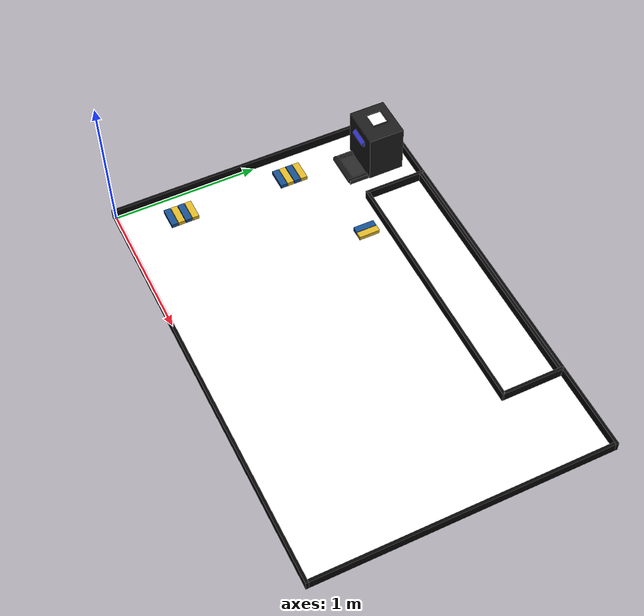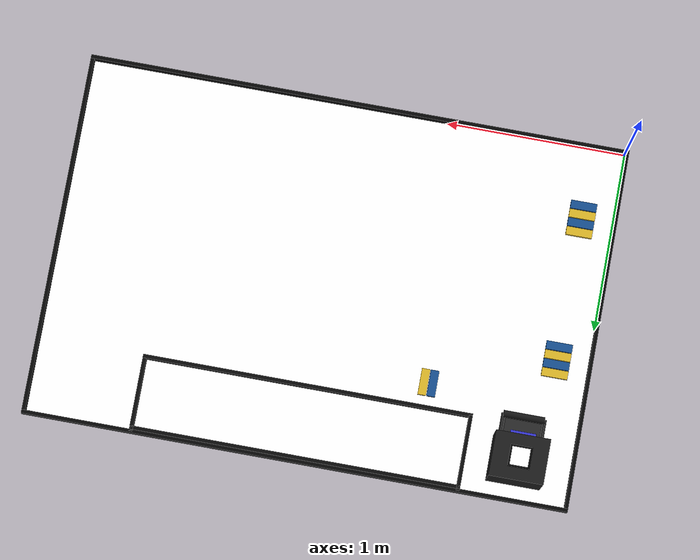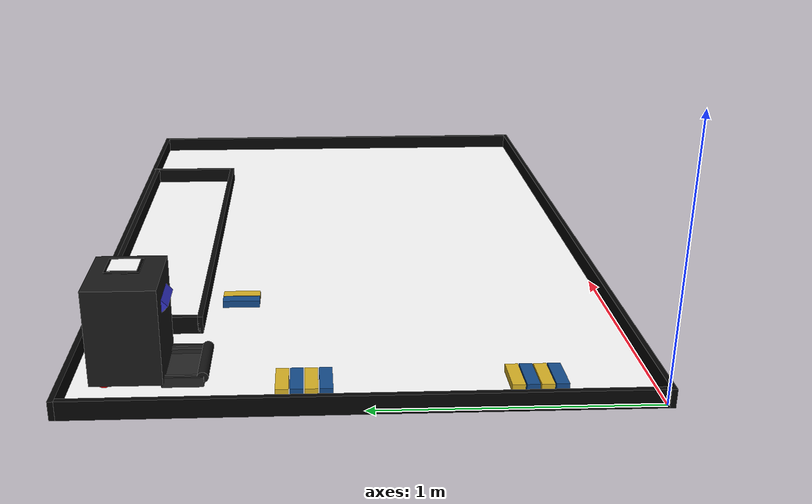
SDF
<sdf version="1.10">
 <world name="Eurobot_world">
  <model name="playground_plane">
   <static>true</static>
   <link name="link">
    <collision name="collision">
     <geometry><plane><normal>0 0 1</normal><size>3 2</size></plane></geometry>
    </collision>
    <visual name="visual">
     <geometry><plane><normal>0 0 1</normal><size>3 2</size></plane></geometry>
     <material>
      <ambient>1 1 1 1</ambient>
      <diffuse>1 1 1 1</diffuse>
      <specular>0.1 0.1 0.1 1</specular>
      <pbr>
       <metal>
        <albedo_map>file://REPLACED_BY_SIM_LAUNCH/materials/textures/playground_mat.png</albedo_map>
        <roughness>1.0</roughness>
        <metalness>0.0</metalness>
       </metal>
      </pbr>
     </material>
    </visual>
    <pose>1.5 1 0 0 0 0</pose>
   </link>
  </model>
  <model name="main_bot" canonical_link="chassis">
   <pose>0.3 1.9 0 0 0 -1.5707963267949</pose>
   <plugin filename="gz-sim-diff-drive-system" name="gz::sim::systems::DiffDrive">
    <left_joint>left_wheel_joint</left_joint>
    <right_joint>right_wheel_joint</right_joint>
    <wheel_separation>0.20</wheel_separation>
    <wheel_radius>0.03</wheel_radius>
    <topic>/cmd_vel</topic>
    <min_linear_acceleration>-2</min_linear_acceleration>
    <max_linear_acceleration>2</max_linear_acceleration>
    <min_linear_velocity>-3</min_linear_velocity>
    <max_linear_velocity>3</max_linear_velocity>
    <min_angular_acceleration>-3.0</min_angular_acceleration>
    <max_angular_acceleration>3.0</max_angular_acceleration>
    <min_angular_velocity>-2.0</min_angular_velocity>
    <max_angular_velocity>2.0</max_angular_velocity>
    <odom_publish_frequency>50</odom_publish_frequency>
    <odom_topic>/odom</odom_topic>
    <frame_id>odom</frame_id>
    <child_frame_id>base_link</child_frame_id>
   </plugin>
   <link name="chassis">
    <visual name="chassis_visual">
     <pose>0.1 0 0.20 0 0 0</pose>
     <geometry><box><size>0.25 0.3 0.35</size></box></geometry>
     <material>
      <ambient>0.1 0.1 0.1 1</ambient>
      <diffuse>0.1 0.1 0.1 1</diffuse>
      <specular>0.2 0.2 0.2 1</specular>
     </material>
    </visual>
    <collision name="chassis_collision">
     <pose>0.1 0 0.18 0 0 0</pose>
     <geometry><box><size>0.25 0.3 0.35</size></box></geometry>
    </collision>
    <inertial>
     <pose>0.1 0 0.18 0 0 0</pose>
     <mass>1</mass>
     <inertia>
      <ixx>0.0177083333</ixx>
      <ixy>0</ixy>
      <ixz>0</ixz>
      <iyy>0.0154166667</iyy>
      <iyz>0</iyz>
      <izz>0.0127083333</izz>
     </inertia>
    </inertial>
    <sensor name="opencr_imu" type="imu">
     <always_on>1</always_on>
     <update_rate>200</update_rate>
     <visualize>false</visualize>
     <topic>/imu</topic>
    </sensor>
    <visual name="bot_tag_post_visual">
     <pose>0.10 0 0.3875 0 0 0</pose>
     <geometry><box><size>0.02 0.02 0.025</size></box></geometry>
     <material>
      <ambient>0.15 0.15 0.15 1</ambient>
      <diffuse>0.15 0.15 0.15 1</diffuse>
      <specular>0.05 0.05 0.05 1</specular>
     </material>
    </visual>
    <visual name="bot_tag_backing_visual">
     <pose>0.10 0 0.4015 0 0 0</pose>
     <geometry><box><size>0.12 0.12 0.003</size></box></geometry>
     <material><ambient>0 0 0 1</ambient><diffuse>0 0 0 1</diffuse><specular>0 0 0 1</specular></material>
    </visual>
    <visual name="bot_tag_71_visual">
     <pose>0.10 0 0.4045 0 0 0</pose>
     <geometry><box><size>0.10 0.10 0.002</size></box></geometry>
     <cast_shadows>false</cast_shadows>
     <material>
      <ambient>1 1 1 1</ambient>
      <diffuse>1 1 1 1</diffuse>
      <specular>0 0 0 1</specular>
      <pbr>
       <metal>
        <albedo_map>file://REPLACED_BY_SIM_LAUNCH/materials/textures/71_Bot_ID_YELLOW.png</albedo_map>
        <roughness>1.0</roughness>
        <metalness>0.0</metalness>
       </metal>
      </pbr>
     </material>
    </visual>
   </link>
   <link name="left_wheel">
    <pose>0.02 0.1 0.03 -1.570796 0 0</pose>
    <visual name="left_wheel_visual">
     <geometry><cylinder><radius>0.03</radius><length>0.03</length></cylinder></geometry>
     <material>
      <ambient>1.0 0.0 0.0 1</ambient>
      <diffuse>1.0 0.0 0.0 1</diffuse>
      <specular>1.0 0.0 0.0 1</specular>
     </material>
    </visual>
    <collision name="left_wheel_collision">
     <geometry><cylinder><radius>0.03</radius><length>0.03</length></cylinder></geometry>
    </collision>
    <inertial>
     <mass>0.05</mass>
     <inertia>
      <ixx>0.000015</ixx>
      <ixy>0</ixy>
      <ixz>0</ixz>
      <iyy>0.000015</iyy>
      <iyz>0</iyz>
      <izz>0.0000225</izz>
     </inertia>
    </inertial>
   </link>
   <joint name="left_wheel_joint" type="revolute">
    <parent>chassis</parent>
    <child>left_wheel</child>
    <axis><xyz>0 0 1</xyz><dynamics><damping>0.2</damping></dynamics></axis>
   </joint>
   <link name="right_wheel">
    <pose>0.02 -0.1 0.03 1.5707963 0 0</pose>
    <visual name="right_wheel_visual">
     <geometry><cylinder><radius>0.03</radius><length>0.03</length></cylinder></geometry>
     <material>
      <ambient>1.0 0.0 0.0 1</ambient>
      <diffuse>1.0 0.0 0.0 1</diffuse>
      <specular>1.0 0.0 0.0 1</specular>
     </material>
    </visual>
    <collision name="right_wheel_collision">
     <geometry><cylinder><radius>0.03</radius><length>0.03</length></cylinder></geometry>
    </collision>
    <inertial>
     <mass>0.05</mass>
     <inertia>
      <ixx>0.000015</ixx>
      <ixy>0</ixy>
      <ixz>0</ixz>
      <iyy>0.000015</iyy>
      <iyz>0</iyz>
      <izz>0.0000225</izz>
     </inertia>
    </inertial>
   </link>
   <joint name="right_wheel_joint" type="revolute">
    <parent>chassis</parent>
    <child>right_wheel</child>
    <axis><xyz>0 0 -1</xyz><dynamics><damping>0.2</damping></dynamics></axis>
   </joint>
   <link name="caster_wheel">
    <pose>0.18 0 0.03 0 0 0</pose>
    <visual name="caster_wheel_visual">
     <geometry><sphere><radius>0.03</radius></sphere></geometry>
     <material>
      <ambient>0.0 1 0.0 1</ambient>
      <diffuse>0.0 1 0.0 1</diffuse>
      <specular>0.0 1 0.0 1</specular>
     </material>
    </visual>
    <collision name="caster_wheel_collision">
     <geometry><sphere><radius>0.03</radius></sphere></geometry>
     <surface><friction><ode><mu>0.001</mu><mu2>0.001</mu2></ode></friction></surface>
    </collision>
    <inertial>
     <mass>0.05</mass>
     <inertia>
      <ixx>0.000018</ixx>
      <ixy>0</ixy>
      <ixz>0</ixz>
      <iyy>0.000018</iyy>
      <iyz>0</iyz>
      <izz>0.000018</izz>
     </inertia>
    </inertial>
   </link>
   <joint name="caster_wheel_joint" type="fixed"><parent>chassis</parent><child>caster_wheel</child></joint>
   <link name="camera_link">
    <pose>0.22 0 0.28 0 0.78539816 0</pose>
    <visual name="camera_visual">
     <geometry><box><size>0.04 0.14 0.04</size></box></geometry>
     <material><ambient>0.2 0.2 0.8 1</ambient><diffuse>0.2 0.2 0.8 1</diffuse></material>
    </visual>
    <visual name="left_lens">
     <pose>0.016 0.06 0 0 1.57 0</pose>
     <geometry><cylinder><radius>0.01</radius><length>0.01</length></cylinder></geometry>
     <material><ambient>0 0 0 1</ambient><diffuse>0 0 0 1</diffuse></material>
    </visual>
    <visual name="right_lens">
     <pose>0.016 -0.06 0 0 1.57 0</pose>
     <geometry><cylinder><radius>0.01</radius><length>0.01</length></cylinder></geometry>
    </visual>
    <inertial>
     <mass>0.02</mass>
     <inertia><ixx>1e-5</ixx><ixy>0</ixy><ixz>0</ixz><iyy>1e-5</iyy><iyz>0</iyz><izz>1e-5</izz></inertia>
    </inertial>
    <sensor name="left_camera" type="camera">
     <pose>0 0.06 0 0 0 0</pose>
     <always_on>true</always_on>
     <update_rate>30</update_rate>
     <visualize>true</visualize>
     <topic>/camera/left/image_raw</topic>
     <camera>
      <horizontal_fov>1.605</horizontal_fov>
      <image><width>640</width><height>480</height><format>R8G8B8</format></image>
      <clip><near>0.05</near><far>20</far></clip>
     </camera>
    </sensor>
    <sensor name="right_camera" type="camera">
     <pose>0 -0.06 0 0 0 0</pose>
     <always_on>true</always_on>
     <update_rate>30</update_rate>
     <visualize>true</visualize>
     <topic>/camera/right/image_raw</topic>
     <camera>
      <horizontal_fov>1.605</horizontal_fov>
      <image><width>640</width><height>480</height><format>R8G8B8</format></image>
      <clip><near>0.05</near><far>20</far></clip>
     </camera>
    </sensor>
   </link>
   <joint name="camera_joint" type="fixed"><parent>chassis</parent><child>camera_link</child></joint>
   <link name="camera_optical_frame"/>
   <joint name="camera_optical_joint" type="fixed">
    <parent>camera_link</parent>
    <child>camera_optical_frame</child>
    <pose>0 0 0 -1.57079632679 0.78539816 -1.57079632679</pose>
   </joint>
   <link name="dustpan">
    <pose>0.215 0 0.033 0 0 0</pose>
    <inertial>
     <pose>0.072 0 0.010 0 0 0</pose>
     <mass>0.15</mass>
     <inertia><ixx>0.00015</ixx><iyy>0.00008</iyy><izz>0.00020</izz><ixy>0</ixy><ixz>0</ixz><iyz>0</iyz></inertia>
    </inertial>
    <visual name="dustpan_bottom_visual">
     <pose>0.072 0 -0.032 0 0 0</pose>
     <geometry><box><size>0.144 0.240 0.002</size></box></geometry>
     <material>
      <ambient>0.12 0.12 0.12 1</ambient>
      <diffuse>0.15 0.15 0.15 1</diffuse>
      <specular>0.3 0.3 0.3 1</specular>
     </material>
    </visual>
    <collision name="dustpan_bottom_collision">
     <pose>0.072 0 -0.033 0 0 0</pose>
     <geometry><box><size>0.144 0.240 0.000001</size></box></geometry>
     <surface><friction><ode><mu>0.1</mu><mu2>0.1</mu2></ode></friction></surface>
    </collision>
    <visual name="dustpan_left_wall_visual">
     <pose>0.072 0.1225 -0.0125 0 0 0</pose>
     <geometry><box><size>0.144 0.005 0.037</size></box></geometry>
     <material>
      <ambient>0.12 0.12 0.12 1</ambient>
      <diffuse>0.15 0.15 0.15 1</diffuse>
      <specular>0.3 0.3 0.3 1</specular>
     </material>
    </visual>
    <collision name="dustpan_left_wall_collision">
     <pose>0.072 0.1225 -0.0125 0 0 0</pose>
     <geometry><box><size>0.144 0.005 0.037</size></box></geometry>
    </collision>
    <visual name="dustpan_right_wall_visual">
     <pose>0.072 -0.1225 -0.0125 0 0 0</pose>
     <geometry><box><size>0.144 0.005 0.037</size></box></geometry>
     <material>
      <ambient>0.12 0.12 0.12 1</ambient>
      <diffuse>0.15 0.15 0.15 1</diffuse>
      <specular>0.3 0.3 0.3 1</specular>
     </material>
    </visual>
    <collision name="dustpan_right_wall_collision">
     <pose>0.072 -0.1225 -0.0125 0 0 0</pose>
     <geometry><box><size>0.144 0.005 0.037</size></box></geometry>
    </collision>
    <visual name="dustpan_back_wall_visual">
     <pose>0.001 0 -0.0125 0 0 0</pose>
     <geometry><box><size>0.002 0.240 0.037</size></box></geometry>
     <material>
      <ambient>0.12 0.12 0.12 1</ambient>
      <diffuse>0.15 0.15 0.15 1</diffuse>
      <specular>0.3 0.3 0.3 1</specular>
     </material>
    </visual>
   </link>
   <joint name="dustpan_joint" type="revolute">
    <parent>chassis</parent>
    <child>dustpan</child>
    <axis>
     <xyz>0 -1 0</xyz>
     <limit><lower>0.0</lower><upper>1.0472</upper><effort>10.0</effort></limit>
     <dynamics><damping>0.5</damping></dynamics>
    </axis>
   </joint>
   <plugin filename="gz-sim-joint-position-controller-system" name="gz::sim::systems::JointPositionController">
    <joint_name>dustpan_joint</joint_name>
    <topic>/dustpan/angle</topic>
    <p_gain>3.0</p_gain>
    <i_gain>0.1</i_gain>
    <d_gain>1.5</d_gain>
   </plugin>
   <link name="carwash_arm">
    <pose>0.215 0 0.033 0 0 0</pose>
    <inertial>
     <pose>0.07 0 0.005 0 0 0</pose>
     <mass>0.08</mass>
     <inertia><ixx>0.00005</ixx><iyy>0.00004</iyy><izz>0.00006</izz><ixy>0</ixy><ixz>0</ixz><iyz>0</iyz></inertia>
    </inertial>
    <visual name="arm_left_visual">
     <pose>0.07 0.105 0.0 0 0 0</pose>
     <geometry><box><size>0.140 0.010 0.010</size></box></geometry>
     <material><ambient>0.15 0.15 0.15 1</ambient><diffuse>0.2 0.2 0.2 1</diffuse></material>
    </visual>
    <visual name="arm_right_visual">
     <pose>0.07 -0.105 0.0 0 0 0</pose>
     <geometry><box><size>0.140 0.010 0.010</size></box></geometry>
     <material><ambient>0.15 0.15 0.15 1</ambient><diffuse>0.2 0.2 0.2 1</diffuse></material>
    </visual>
   </link>
   <link name="carwash_roller">
    <pose relative_to="carwash_arm">0.140 0 0.0 1.5708 0 0</pose>
    <inertial>
     <mass>0.05</mass>
     <inertia><ixx>0.00022</ixx><iyy>0.00001</iyy><izz>0.00022</izz><ixy>0</ixy><ixz>0</ixz><iyz>0</iyz></inertia>
    </inertial>
    <visual name="roller_visual">
     <geometry><cylinder><radius>0.020</radius><length>0.230</length></cylinder></geometry>
     <material>
      <ambient>0.05 0.05 0.05 1</ambient>
      <diffuse>0.08 0.08 0.08 1</diffuse>
      <specular>0.1 0.1 0.1 1</specular>
     </material>
    </visual>
    <collision name="roller_collision">
     <geometry><cylinder><radius>0.020</radius><length>0.230</length></cylinder></geometry>
     <surface><friction><ode><mu>2.0</mu><mu2>2.0</mu2></ode></friction></surface>
    </collision>
   </link>
   <joint name="carwash_arm_joint" type="revolute">
    <parent>chassis</parent>
    <child>carwash_arm</child>
    <axis>
     <xyz>0 -1 0</xyz>
     <limit><lower>0.0</lower><upper>1.2217</upper><effort>10.0</effort></limit>
     <dynamics><damping>0.2</damping></dynamics>
    </axis>
   </joint>
   <joint name="carwash_roller_joint" type="revolute">
    <parent>carwash_arm</parent>
    <child>carwash_roller</child>
    <axis>
     <xyz>0 0 -1</xyz>
     <limit><lower>-1e16</lower><upper>1e16</upper></limit>
     <dynamics><damping>0.01</damping></dynamics>
    </axis>
   </joint>
   <plugin filename="gz-sim-joint-position-controller-system" name="gz::sim::systems::JointPositionController">
    <joint_name>carwash_arm_joint</joint_name>
    <topic>/carwash/arm_angle</topic>
    <p_gain>5.0</p_gain>
    <i_gain>0.1</i_gain>
    <d_gain>1.0</d_gain>
   </plugin>
   <plugin filename="gz-sim-joint-controller-system" name="gz::sim::systems::JointController">
    <joint_name>carwash_roller_joint</joint_name>
    <topic>/carwash/roller_speed</topic>
   </plugin>
  </model>
  <model name="jenga_z1_p1">
   <pose>0.175 1.125 0.015 0 0 0.0</pose>
   <link name="link">
    <inertial>
     <mass>0.02</mass>
     <inertia>
      <ixx>0.0000012</ixx>
      <iyy>0.0000042</iyy>
      <izz>0.0000045</izz>
      <ixy>0</ixy>
      <ixz>0</ixz>
      <iyz>0</iyz>
     </inertia>
    </inertial>
    <collision name="collision">
     <geometry><box><size>0.140 0.040 0.022</size></box></geometry>
     <surface>
      <friction><ode><mu>0.3</mu><mu2>0.3</mu2></ode></friction>
      <contact><ode><max_vel>0.1</max_vel><min_depth>0.001</min_depth></ode></contact>
     </surface>
    </collision>
    <visual name="visual">
     <geometry><box><size>0.146 0.046 0.028</size></box></geometry>
     <material>
      <ambient>0.08 0.3 0.55 1</ambient>
      <diffuse>0.08 0.3 0.55 1</diffuse>
      <specular>0.2 0.2 0.2 1</specular>
     </material>
    </visual>
   </link>
  </model>
  <model name="jenga_z1_p2">
   <pose>0.175 1.175 0.015 0 0 0.0</pose>
   <link name="link">
    <inertial>
     <mass>0.02</mass>
     <inertia>
      <ixx>0.0000012</ixx>
      <iyy>0.0000042</iyy>
      <izz>0.0000045</izz>
      <ixy>0</ixy>
      <ixz>0</ixz>
      <iyz>0</iyz>
     </inertia>
    </inertial>
    <collision name="collision">
     <geometry><box><size>0.140 0.040 0.022</size></box></geometry>
     <surface>
      <friction><ode><mu>0.3</mu><mu2>0.3</mu2></ode></friction>
      <contact><ode><max_vel>0.1</max_vel><min_depth>0.001</min_depth></ode></contact>
     </surface>
    </collision>
    <visual name="visual">
     <geometry><box><size>0.146 0.046 0.028</size></box></geometry>
     <material>
      <ambient>0.85 0.7 0.15 1</ambient>
      <diffuse>0.85 0.7 0.15 1</diffuse>
      <specular>0.2 0.2 0.2 1</specular>
     </material>
    </visual>
   </link>
  </model>
  <model name="jenga_z1_p3">
   <pose>0.175 1.2249999999999999 0.015 0 0 0.0</pose>
   <link name="link">
    <inertial>
     <mass>0.02</mass>
     <inertia>
      <ixx>0.0000012</ixx>
      <iyy>0.0000042</iyy>
      <izz>0.0000045</izz>
      <ixy>0</ixy>
      <ixz>0</ixz>
      <iyz>0</iyz>
     </inertia>
    </inertial>
    <collision name="collision">
     <geometry><box><size>0.140 0.040 0.022</size></box></geometry>
     <surface>
      <friction><ode><mu>0.3</mu><mu2>0.3</mu2></ode></friction>
      <contact><ode><max_vel>0.1</max_vel><min_depth>0.001</min_depth></ode></contact>
     </surface>
    </collision>
    <visual name="visual">
     <geometry><box><size>0.146 0.046 0.028</size></box></geometry>
     <material>
      <ambient>0.08 0.3 0.55 1</ambient>
      <diffuse>0.08 0.3 0.55 1</diffuse>
      <specular>0.2 0.2 0.2 1</specular>
     </material>
    </visual>
   </link>
  </model>
  <model name="jenga_z1_p4">
   <pose>0.175 1.275 0.015 0 0 0.0</pose>
   <link name="link">
    <inertial>
     <mass>0.02</mass>
     <inertia>
      <ixx>0.0000012</ixx>
      <iyy>0.0000042</iyy>
      <izz>0.0000045</izz>
      <ixy>0</ixy>
      <ixz>0</ixz>
      <iyz>0</iyz>
     </inertia>
    </inertial>
    <collision name="collision">
     <geometry><box><size>0.140 0.040 0.022</size></box></geometry>
     <surface>
      <friction><ode><mu>0.3</mu><mu2>0.3</mu2></ode></friction>
      <contact><ode><max_vel>0.1</max_vel><min_depth>0.001</min_depth></ode></contact>
     </surface>
    </collision>
    <visual name="visual">
     <geometry><box><size>0.146 0.046 0.028</size></box></geometry>
     <material>
      <ambient>0.85 0.7 0.15 1</ambient>
      <diffuse>0.85 0.7 0.15 1</diffuse>
      <specular>0.2 0.2 0.2 1</specular>
     </material>
    </visual>
   </link>
  </model>
  <model name="jenga_z2_p1">
   <pose>0.175 0.325 0.015 0 0 0.0</pose>
   <link name="link">
    <inertial>
     <mass>0.02</mass>
     <inertia>
      <ixx>0.0000012</ixx>
      <iyy>0.0000042</iyy>
      <izz>0.0000045</izz>
      <ixy>0</ixy>
      <ixz>0</ixz>
      <iyz>0</iyz>
     </inertia>
    </inertial>
    <collision name="collision">
     <geometry><box><size>0.140 0.040 0.022</size></box></geometry>
     <surface>
      <friction><ode><mu>0.3</mu><mu2>0.3</mu2></ode></friction>
      <contact><ode><max_vel>0.1</max_vel><min_depth>0.001</min_depth></ode></contact>
     </surface>
    </collision>
    <visual name="visual">
     <geometry><box><size>0.146 0.046 0.028</size></box></geometry>
     <material>
      <ambient>0.08 0.3 0.55 1</ambient>
      <diffuse>0.08 0.3 0.55 1</diffuse>
      <specular>0.2 0.2 0.2 1</specular>
     </material>
    </visual>
   </link>
  </model>
  <model name="jenga_z2_p2">
   <pose>0.175 0.375 0.015 0 0 0.0</pose>
   <link name="link">
    <inertial>
     <mass>0.02</mass>
     <inertia>
      <ixx>0.0000012</ixx>
      <iyy>0.0000042</iyy>
      <izz>0.0000045</izz>
      <ixy>0</ixy>
      <ixz>0</ixz>
      <iyz>0</iyz>
     </inertia>
    </inertial>
    <collision name="collision">
     <geometry><box><size>0.140 0.040 0.022</size></box></geometry>
     <surface>
      <friction><ode><mu>0.3</mu><mu2>0.3</mu2></ode></friction>
      <contact><ode><max_vel>0.1</max_vel><min_depth>0.001</min_depth></ode></contact>
     </surface>
    </collision>
    <visual name="visual">
     <geometry><box><size>0.146 0.046 0.028</size></box></geometry>
     <material>
      <ambient>0.85 0.7 0.15 1</ambient>
      <diffuse>0.85 0.7 0.15 1</diffuse>
      <specular>0.2 0.2 0.2 1</specular>
     </material>
    </visual>
   </link>
  </model>
  <model name="jenga_z2_p3">
   <pose>0.175 0.42500000000000004 0.015 0 0 0.0</pose>
   <link name="link">
    <inertial>
     <mass>0.02</mass>
     <inertia>
      <ixx>0.0000012</ixx>
      <iyy>0.0000042</iyy>
      <izz>0.0000045</izz>
      <ixy>0</ixy>
      <ixz>0</ixz>
      <iyz>0</iyz>
     </inertia>
    </inertial>
    <collision name="collision">
     <geometry><box><size>0.140 0.040 0.022</size></box></geometry>
     <surface>
      <friction><ode><mu>0.3</mu><mu2>0.3</mu2></ode></friction>
      <contact><ode><max_vel>0.1</max_vel><min_depth>0.001</min_depth></ode></contact>
     </surface>
    </collision>
    <visual name="visual">
     <geometry><box><size>0.146 0.046 0.028</size></box></geometry>
     <material>
      <ambient>0.08 0.3 0.55 1</ambient>
      <diffuse>0.08 0.3 0.55 1</diffuse>
      <specular>0.2 0.2 0.2 1</specular>
     </material>
    </visual>
   </link>
  </model>
  <model name="jenga_z2_p4">
   <pose>0.175 0.47500000000000003 0.015 0 0 0.0</pose>
   <link name="link">
    <inertial>
     <mass>0.02</mass>
     <inertia>
      <ixx>0.0000012</ixx>
      <iyy>0.0000042</iyy>
      <izz>0.0000045</izz>
      <ixy>0</ixy>
      <ixz>0</ixz>
      <iyz>0</iyz>
     </inertia>
    </inertial>
    <collision name="collision">
     <geometry><box><size>0.140 0.040 0.022</size></box></geometry>
     <surface>
      <friction><ode><mu>0.3</mu><mu2>0.3</mu2></ode></friction>
      <contact><ode><max_vel>0.1</max_vel><min_depth>0.001</min_depth></ode></contact>
     </surface>
    </collision>
    <visual name="visual">
     <geometry><box><size>0.146 0.046 0.028</size></box></geometry>
     <material>
      <ambient>0.85 0.7 0.15 1</ambient>
      <diffuse>0.85 0.7 0.15 1</diffuse>
      <specular>0.2 0.2 0.2 1</specular>
     </material>
    </visual>
   </link>
  </model>
  <model name="jenga_z9_p1">
   <pose>0.825 1.45 0.015 0 0 1.5707963267948966</pose>
   <link name="link">
    <inertial>
     <mass>0.02</mass>
     <inertia>
      <ixx>0.0000012</ixx>
      <iyy>0.0000042</iyy>
      <izz>0.0000045</izz>
      <ixy>0</ixy>
      <ixz>0</ixz>
      <iyz>0</iyz>
     </inertia>
    </inertial>
    <collision name="collision">
     <geometry><box><size>0.140 0.040 0.022</size></box></geometry>
     <surface>
      <friction><ode><mu>0.3</mu><mu2>0.3</mu2></ode></friction>
      <contact><ode><max_vel>0.1</max_vel><min_depth>0.001</min_depth></ode></contact>
     </surface>
    </collision>
    <visual name="visual">
     <geometry><box><size>0.146 0.046 0.028</size></box></geometry>
     <material>
      <ambient>0.08 0.3 0.55 1</ambient>
      <diffuse>0.08 0.3 0.55 1</diffuse>
      <specular>0.2 0.2 0.2 1</specular>
     </material>
    </visual>
   </link>
  </model>
  <model name="jenga_z9_p2">
   <pose>0.875 1.45 0.015 0 0 1.5707963267948966</pose>
   <link name="link">
    <inertial>
     <mass>0.02</mass>
     <inertia>
      <ixx>0.0000012</ixx>
      <iyy>0.0000042</iyy>
      <izz>0.0000045</izz>
      <ixy>0</ixy>
      <ixz>0</ixz>
      <iyz>0</iyz>
     </inertia>
    </inertial>
    <collision name="collision">
     <geometry><box><size>0.140 0.040 0.022</size></box></geometry>
     <surface>
      <friction><ode><mu>0.3</mu><mu2>0.3</mu2></ode></friction>
      <contact><ode><max_vel>0.1</max_vel><min_depth>0.001</min_depth></ode></contact>
     </surface>
    </collision>
    <visual name="visual">
     <geometry><box><size>0.146 0.046 0.028</size></box></geometry>
     <material>
      <ambient>0.85 0.7 0.15 1</ambient>
      <diffuse>0.85 0.7 0.15 1</diffuse>
      <specular>0.2 0.2 0.2 1</specular>
     </material>
    </visual>
   </link>
  </model>
  <model name="eurobot_granary_walls">
   <static>true</static>
   <link name="granary_south_wall">
    <pose>1.5 1.59 0.035 0 0 0</pose>
    <collision name="collision"><geometry><box><size>1.84 0.02 0.07</size></box></geometry></collision>
    <visual name="visual">
     <geometry><box><size>1.84 0.02 0.07</size></box></geometry>
     <material><ambient>0.03 0.03 0.03 1</ambient><diffuse>0.03 0.03 0.03 1</diffuse></material>
    </visual>
   </link>
   <link name="granary_north_wall">
    <pose>1.5 1.99 0.035 0 0 0</pose>
    <collision name="collision"><geometry><box><size>1.84 0.02 0.07</size></box></geometry></collision>
    <visual name="visual">
     <geometry><box><size>1.84 0.02 0.07</size></box></geometry>
     <material><ambient>0.03 0.03 0.03 1</ambient><diffuse>0.03 0.03 0.03 1</diffuse></material>
    </visual>
   </link>
   <link name="granary_west_wall">
    <pose>0.59 1.8 0.035 0 0 0</pose>
    <collision name="collision"><geometry><box><size>0.02 0.42 0.07</size></box></geometry></collision>
    <visual name="visual">
     <geometry><box><size>0.02 0.42 0.07</size></box></geometry>
     <material><ambient>0.03 0.03 0.03 1</ambient><diffuse>0.03 0.03 0.03 1</diffuse></material>
    </visual>
   </link>
   <link name="granary_east_wall">
    <pose>2.41 1.8 0.035 0 0 0</pose>
    <collision name="collision"><geometry><box><size>0.02 0.42 0.07</size></box></geometry></collision>
    <visual name="visual">
     <geometry><box><size>0.02 0.42 0.07</size></box></geometry>
     <material><ambient>0.03 0.03 0.03 1</ambient><diffuse>0.03 0.03 0.03 1</diffuse></material>
    </visual>
   </link>
  </model>
  <model name="eurobot_perimeter_walls">
   <static>true</static>
   <link name="south_wall">
    <pose>1.5 -0.01 0.035 0 0 0</pose>
    <collision name="collision"><geometry><box><size>3.04 0.02 0.07</size></box></geometry></collision>
    <visual name="visual">
     <geometry><box><size>3.04 0.02 0.07</size></box></geometry>
     <material><ambient>0.02 0.02 0.02 1</ambient><diffuse>0.02 0.02 0.02 1</diffuse></material>
    </visual>
   </link>
   <link name="north_wall">
    <pose>1.5 2.01 0.035 0 0 0</pose>
    <collision name="collision"><geometry><box><size>3.04 0.02 0.07</size></box></geometry></collision>
    <visual name="visual">
     <geometry><box><size>3.04 0.02 0.07</size></box></geometry>
     <material><ambient>0.02 0.02 0.02 1</ambient><diffuse>0.02 0.02 0.02 1</diffuse></material>
    </visual>
   </link>
   <link name="west_wall">
    <pose>-0.01 1.0 0.035 0 0 0</pose>
    <collision name="collision"><geometry><box><size>0.02 2.0 0.07</size></box></geometry></collision>
    <visual name="visual">
     <geometry><box><size>0.02 2.0 0.07</size></box></geometry>
     <material><ambient>0.02 0.02 0.02 1</ambient><diffuse>0.02 0.02 0.02 1</diffuse></material>
    </visual>
   </link>
   <link name="east_wall">
    <pose>3.01 1.0 0.035 0 0 0</pose>
    <collision name="collision"><geometry><box><size>0.02 2.0 0.07</size></box></geometry></collision>
    <visual name="visual">
     <geometry><box><size>0.02 2.0 0.07</size></box></geometry>
     <material><ambient>0.02 0.02 0.02 1</ambient><diffuse>0.02 0.02 0.02 1</diffuse></material>
    </visual>
   </link>
  </model>
 </world>
</sdf>
